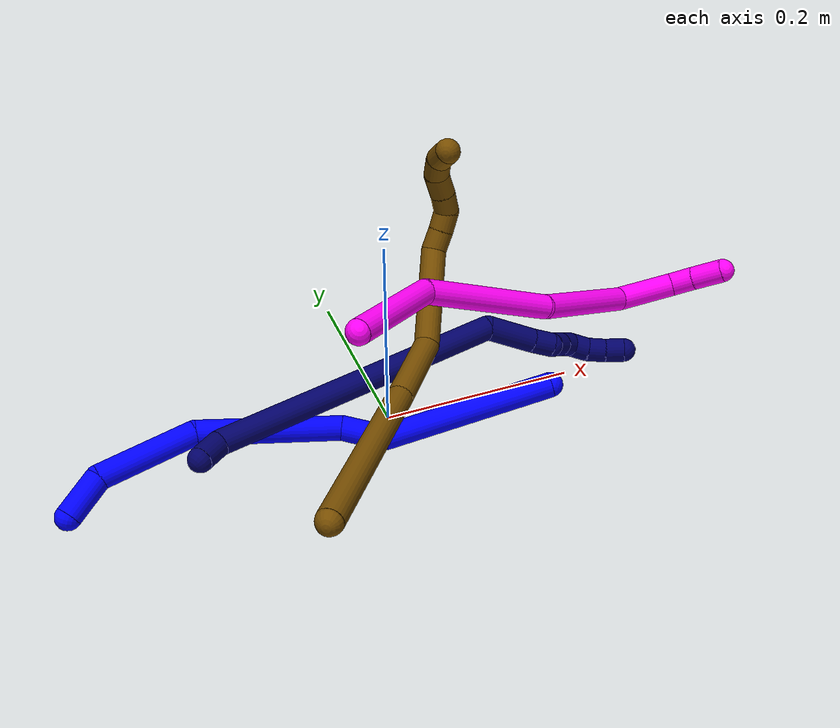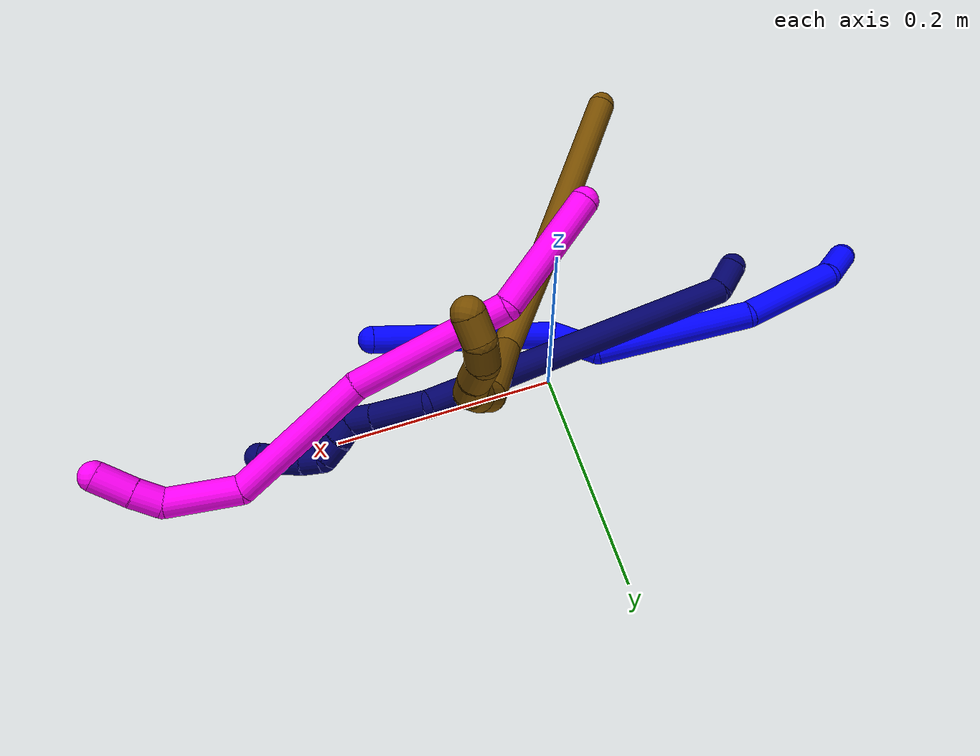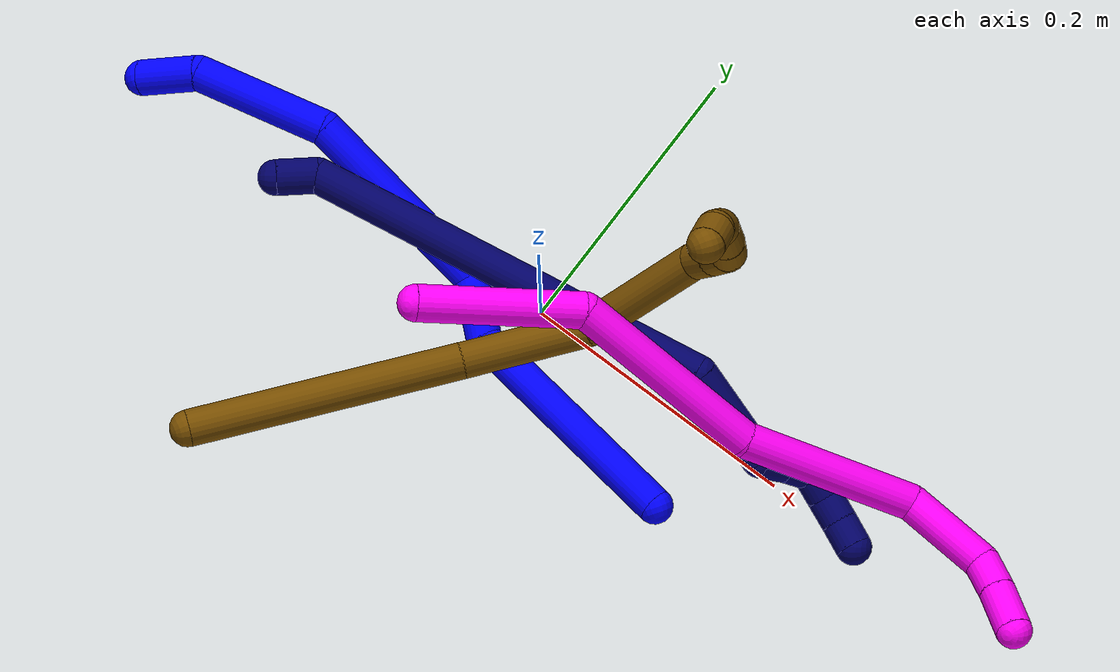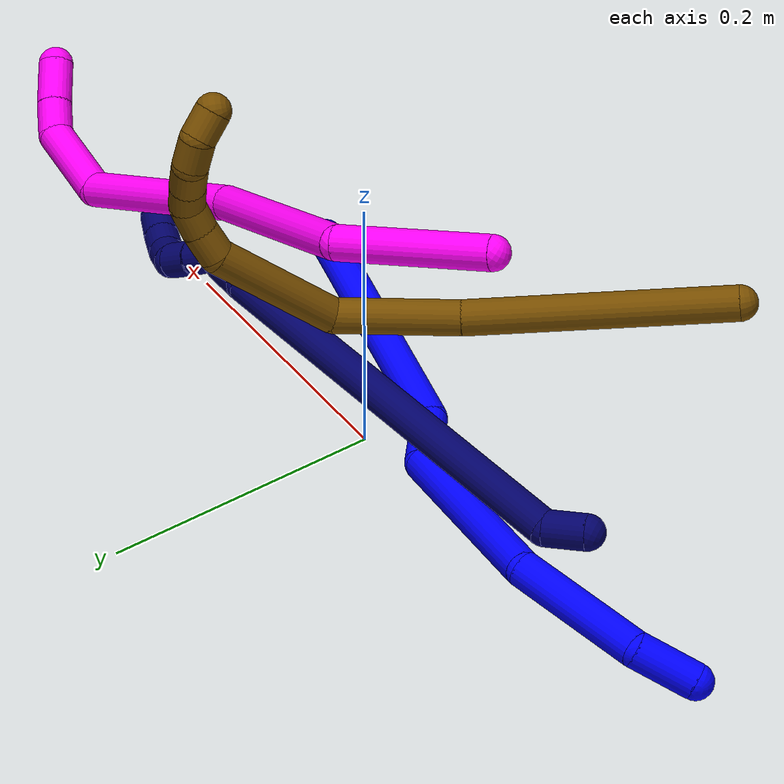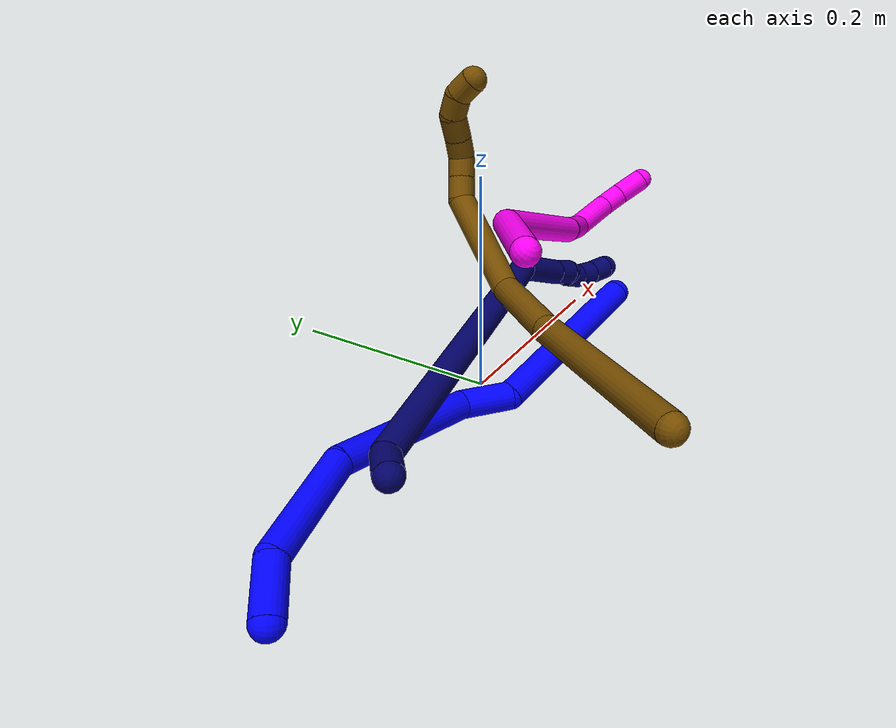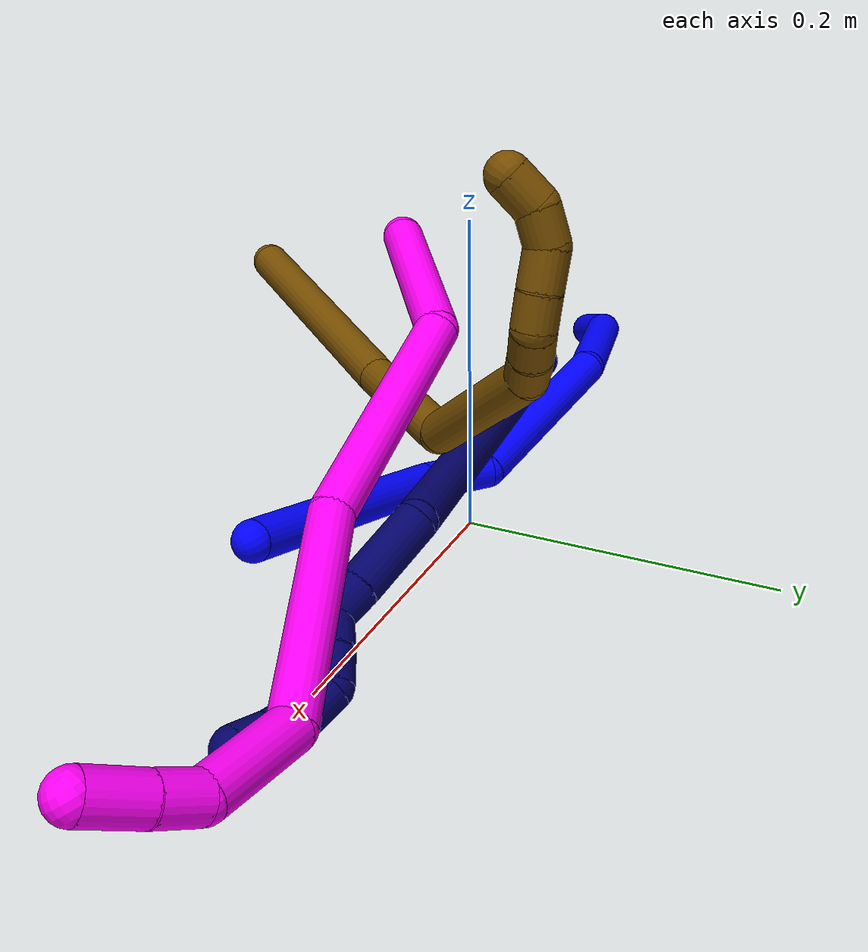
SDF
<sdf version="1.7">
 <world name="default">
  <model name="1">
   <static>0</static>
   <link name="1">
    <collision name="collision-cylinder-e_1_1_4">
     <pose>0.020949 -0.003981 0.004871 0.685206 1.27907 0.518649</pose>
     <geometry><cylinder><radius>0.0125</radius><length>0.043746</length></cylinder></geometry>
     <surface>
      <friction><ode><mu>1.16</mu><mu2>1.16</mu2><slip1>0</slip1><slip2>0</slip2></ode></friction>
      <contact><ode><kp>1e+06</kp><kd>1</kd><max_vel>0</max_vel><min_depth>0.001</min_depth></ode></contact>
     </surface>
    </collision>
    <visual name="visual-cylinder-e_1_1_4">
     <pose>0.020949 -0.003981 0.004871 0.685206 1.27907 0.518649</pose>
     <geometry><cylinder><radius>0.0125</radius><length>0.043746</length></cylinder></geometry>
     <material><ambient>0 0 1 1</ambient></material>
    </visual>
    <collision name="collision-cylinder-e_2_4_5">
     <pose>0.076763 -0.019196 0.041584 0.339181 0.801427 0.144829</pose>
     <geometry><cylinder><radius>0.0125</radius><length>0.097072</length></cylinder></geometry>
     <surface>
      <friction><ode><mu>1.16</mu><mu2>1.16</mu2><slip1>0</slip1><slip2>0</slip2></ode></friction>
      <contact><ode><kp>1e+06</kp><kd>1</kd><max_vel>0</max_vel><min_depth>0.001</min_depth></ode></contact>
     </surface>
    </collision>
    <visual name="visual-cylinder-e_2_4_5">
     <pose>0.076763 -0.019196 0.041584 0.339181 0.801427 0.144829</pose>
     <geometry><cylinder><radius>0.0125</radius><length>0.097072</length></cylinder></geometry>
     <material><ambient>0 0 1 1</ambient></material>
    </visual>
    <collision name="collision-cylinder-e_3_5_6">
     <pose>0.138997 -0.045238 0.138011 0.225371 0.391686 0.044893</pose>
     <geometry><cylinder><radius>0.0125</radius><length>0.143382</length></cylinder></geometry>
     <surface>
      <friction><ode><mu>1.16</mu><mu2>1.16</mu2><slip1>0</slip1><slip2>0</slip2></ode></friction>
      <contact><ode><kp>1e+06</kp><kd>1</kd><max_vel>0</max_vel><min_depth>0.001</min_depth></ode></contact>
     </surface>
    </collision>
    <visual name="visual-cylinder-e_3_5_6">
     <pose>0.138997 -0.045238 0.138011 0.225371 0.391686 0.044893</pose>
     <geometry><cylinder><radius>0.0125</radius><length>0.143382</length></cylinder></geometry>
     <material><ambient>0 0 1 1</ambient></material>
    </visual>
    <collision name="collision-cylinder-e_4_6_7">
     <pose>0.167414 -0.053848 0.224101 -0.280596 0.046857 -0.006619</pose>
     <geometry><cylinder><radius>0.0125</radius><length>0.044808</length></cylinder></geometry>
     <surface>
      <friction><ode><mu>1.16</mu><mu2>1.16</mu2><slip1>0</slip1><slip2>0</slip2></ode></friction>
      <contact><ode><kp>1e+06</kp><kd>1</kd><max_vel>0</max_vel><min_depth>0.001</min_depth></ode></contact>
     </surface>
    </collision>
    <visual name="visual-cylinder-e_4_6_7">
     <pose>0.167414 -0.053848 0.224101 -0.280596 0.046857 -0.006619</pose>
     <geometry><cylinder><radius>0.0125</radius><length>0.044808</length></cylinder></geometry>
     <material><ambient>0 0 1 1</ambient></material>
    </visual>
    <collision name="collision-cylinder-e_5_7_2">
     <pose>0.218235 -0.039325 0.31462 -0.120048 0.621376 -0.038587</pose>
     <geometry><cylinder><radius>0.0125</radius><length>0.170992</length></cylinder></geometry>
     <surface>
      <friction><ode><mu>1.16</mu><mu2>1.16</mu2><slip1>0</slip1><slip2>0</slip2></ode></friction>
      <contact><ode><kp>1e+06</kp><kd>1</kd><max_vel>0</max_vel><min_depth>0.001</min_depth></ode></contact>
     </surface>
    </collision>
    <visual name="visual-cylinder-e_5_7_2">
     <pose>0.218235 -0.039325 0.31462 -0.120048 0.621376 -0.038587</pose>
     <geometry><cylinder><radius>0.0125</radius><length>0.170992</length></cylinder></geometry>
     <material><ambient>0 0 1 1</ambient></material>
    </visual>
    <collision name="collision-sphere-2">
     <pose>0.268007 -0.031 0.383635 0 -0 0</pose>
     <geometry><sphere><radius>0.0125</radius></sphere></geometry>
     <surface>
      <friction><ode><mu>1.16</mu><mu2>1.16</mu2><slip1>0</slip1><slip2>0</slip2></ode></friction>
      <contact><ode><kp>1e+06</kp><kd>1</kd><max_vel>0</max_vel><min_depth>0.001</min_depth></ode></contact>
     </surface>
    </collision>
    <visual name="visual-sphere-2">
     <pose>0.268007 -0.031 0.383635 0 -0 0</pose>
     <geometry><sphere><radius>0.0125</radius></sphere></geometry>
     <material><ambient>0 0 1 1</ambient></material>
    </visual>
    <collision name="collision-sphere-7">
     <pose>0.168463 -0.04765 0.245606 0 -0 0</pose>
     <geometry><sphere><radius>0.0125</radius></sphere></geometry>
     <surface>
      <friction><ode><mu>1.16</mu><mu2>1.16</mu2><slip1>0</slip1><slip2>0</slip2></ode></friction>
      <contact><ode><kp>1e+06</kp><kd>1</kd><max_vel>0</max_vel><min_depth>0.001</min_depth></ode></contact>
     </surface>
    </collision>
    <visual name="visual-sphere-7">
     <pose>0.168463 -0.04765 0.245606 0 -0 0</pose>
     <geometry><sphere><radius>0.0125</radius></sphere></geometry>
     <material><ambient>0 0 1 1</ambient></material>
    </visual>
    <collision name="collision-sphere-6">
     <pose>0.166365 -0.060045 0.202597 0 -0 0</pose>
     <geometry><sphere><radius>0.0125</radius></sphere></geometry>
     <surface>
      <friction><ode><mu>1.16</mu><mu2>1.16</mu2><slip1>0</slip1><slip2>0</slip2></ode></friction>
      <contact><ode><kp>1e+06</kp><kd>1</kd><max_vel>0</max_vel><min_depth>0.001</min_depth></ode></contact>
     </surface>
    </collision>
    <visual name="visual-sphere-6">
     <pose>0.166365 -0.060045 0.202597 0 -0 0</pose>
     <geometry><sphere><radius>0.0125</radius></sphere></geometry>
     <material><ambient>0 0 1 1</ambient></material>
    </visual>
    <collision name="collision-sphere-5">
     <pose>0.111629 -0.030431 0.073425 0 -0 0</pose>
     <geometry><sphere><radius>0.0125</radius></sphere></geometry>
     <surface>
      <friction><ode><mu>1.16</mu><mu2>1.16</mu2><slip1>0</slip1><slip2>0</slip2></ode></friction>
      <contact><ode><kp>1e+06</kp><kd>1</kd><max_vel>0</max_vel><min_depth>0.001</min_depth></ode></contact>
     </surface>
    </collision>
    <visual name="visual-sphere-5">
     <pose>0.111629 -0.030431 0.073425 0 -0 0</pose>
     <geometry><sphere><radius>0.0125</radius></sphere></geometry>
     <material><ambient>0 0 1 1</ambient></material>
    </visual>
    <collision name="collision-sphere-1">
     <geometry><sphere><radius>0.0125</radius></sphere></geometry>
     <surface>
      <friction><ode><mu>1.16</mu><mu2>1.16</mu2><slip1>0</slip1><slip2>0</slip2></ode></friction>
      <contact><ode><kp>1e+06</kp><kd>1</kd><max_vel>0</max_vel><min_depth>0.001</min_depth></ode></contact>
     </surface>
    </collision>
    <visual name="visual-sphere-1">
     <geometry><sphere><radius>0.0125</radius></sphere></geometry>
     <material><ambient>0 0 1 1</ambient></material>
    </visual>
    <collision name="collision-sphere-4">
     <pose>0.041898 -0.007962 0.009742 0 -0 0</pose>
     <geometry><sphere><radius>0.0125</radius></sphere></geometry>
     <surface>
      <friction><ode><mu>1.16</mu><mu2>1.16</mu2><slip1>0</slip1><slip2>0</slip2></ode></friction>
      <contact><ode><kp>1e+06</kp><kd>1</kd><max_vel>0</max_vel><min_depth>0.001</min_depth></ode></contact>
     </surface>
    </collision>
    <visual name="visual-sphere-4">
     <pose>0.041898 -0.007962 0.009742 0 -0 0</pose>
     <geometry><sphere><radius>0.0125</radius></sphere></geometry>
     <material><ambient>0 0 1 1</ambient></material>
    </visual>
    <inertial>
     <pose>0.146231 -0.035322 0.175754 0 -0 0</pose>
     <mass>0.5</mass>
     <inertia>
      <ixx>0.00067</ixx>
      <ixy>0</ixy>
      <ixz>0</ixz>
      <iyy>0.000765</iyy>
      <iyz>0</iyz>
      <izz>-0.00035</izz>
     </inertia>
    </inertial>
   </link>
   <pose>-0.320092 -0.036986 0.011367 1.87793 -0.620649 0.804136</pose>
  </model>
  <model name="7">
   <static>0</static>
   <link name="7">
    <collision name="collision-cylinder-e_1_1_4">
     <pose>0.001512 0.005085 0.013456 -0.361302 0.104737 -0.019146</pose>
     <geometry><cylinder><radius>0.0125</radius><length>0.028928</length></cylinder></geometry>
     <surface>
      <friction><ode><mu>1.16</mu><mu2>1.16</mu2><slip1>0</slip1><slip2>0</slip2></ode></friction>
      <contact><ode><kp>1e+06</kp><kd>1</kd><max_vel>0</max_vel><min_depth>0.001</min_depth></ode></contact>
     </surface>
    </collision>
    <visual name="visual-cylinder-e_1_1_4">
     <pose>0.001512 0.005085 0.013456 -0.361302 0.104737 -0.019146</pose>
     <geometry><cylinder><radius>0.0125</radius><length>0.028928</length></cylinder></geometry>
     <material><ambient>0.003922 0 0.403922 1</ambient></material>
    </visual>
    <collision name="collision-cylinder-e_2_4_5">
     <pose>0.057678 -0.016132 0.162302 0.191879 0.377284 0.036741</pose>
     <geometry><cylinder><radius>0.0125</radius><length>0.29671</length></cylinder></geometry>
     <surface>
      <friction><ode><mu>1.16</mu><mu2>1.16</mu2><slip1>0</slip1><slip2>0</slip2></ode></friction>
      <contact><ode><kp>1e+06</kp><kd>1</kd><max_vel>0</max_vel><min_depth>0.001</min_depth></ode></contact>
     </surface>
    </collision>
    <visual name="visual-cylinder-e_2_4_5">
     <pose>0.057678 -0.016132 0.162302 0.191879 0.377284 0.036741</pose>
     <geometry><cylinder><radius>0.0125</radius><length>0.29671</length></cylinder></geometry>
     <material><ambient>0.003922 0 0.403922 1</ambient></material>
    </visual>
    <collision name="collision-cylinder-e_3_5_6">
     <pose>0.134151 -0.044725 0.311102 0.16916 1.01325 0.094028</pose>
     <geometry><cylinder><radius>0.0125</radius><length>0.051427</length></cylinder></geometry>
     <surface>
      <friction><ode><mu>1.16</mu><mu2>1.16</mu2><slip1>0</slip1><slip2>0</slip2></ode></friction>
      <contact><ode><kp>1e+06</kp><kd>1</kd><max_vel>0</max_vel><min_depth>0.001</min_depth></ode></contact>
     </surface>
    </collision>
    <visual name="visual-cylinder-e_3_5_6">
     <pose>0.134151 -0.044725 0.311102 0.16916 1.01325 0.094028</pose>
     <geometry><cylinder><radius>0.0125</radius><length>0.051427</length></cylinder></geometry>
     <material><ambient>0.003922 0 0.403922 1</ambient></material>
    </visual>
    <collision name="collision-cylinder-e_4_6_7">
     <pose>0.165143 -0.048866 0.330635 0.293595 0.961955 0.154019</pose>
     <geometry><cylinder><radius>0.0125</radius><length>0.022366</length></cylinder></geometry>
     <surface>
      <friction><ode><mu>1.16</mu><mu2>1.16</mu2><slip1>0</slip1><slip2>0</slip2></ode></friction>
      <contact><ode><kp>1e+06</kp><kd>1</kd><max_vel>0</max_vel><min_depth>0.001</min_depth></ode></contact>
     </surface>
    </collision>
    <visual name="visual-cylinder-e_4_6_7">
     <pose>0.165143 -0.048866 0.330635 0.293595 0.961955 0.154019</pose>
     <geometry><cylinder><radius>0.0125</radius><length>0.022366</length></cylinder></geometry>
     <material><ambient>0.003922 0 0.403922 1</ambient></material>
    </visual>
    <collision name="collision-cylinder-e_5_7_8">
     <pose>0.179087 -0.045856 0.344319 -0.571334 0.487893 -0.145946</pose>
     <geometry><cylinder><radius>0.0125</radius><length>0.020354</length></cylinder></geometry>
     <surface>
      <friction><ode><mu>1.16</mu><mu2>1.16</mu2><slip1>0</slip1><slip2>0</slip2></ode></friction>
      <contact><ode><kp>1e+06</kp><kd>1</kd><max_vel>0</max_vel><min_depth>0.001</min_depth></ode></contact>
     </surface>
    </collision>
    <visual name="visual-cylinder-e_5_7_8">
     <pose>0.179087 -0.045856 0.344319 -0.571334 0.487893 -0.145946</pose>
     <geometry><cylinder><radius>0.0125</radius><length>0.020354</length></cylinder></geometry>
     <material><ambient>0.003922 0 0.403922 1</ambient></material>
    </visual>
    <collision name="collision-cylinder-e_6_8_9">
     <pose>0.189316 -0.036745 0.359225 -0.524554 0.571607 -0.157448</pose>
     <geometry><cylinder><radius>0.0125</radius><length>0.020179</length></cylinder></geometry>
     <surface>
      <friction><ode><mu>1.16</mu><mu2>1.16</mu2><slip1>0</slip1><slip2>0</slip2></ode></friction>
      <contact><ode><kp>1e+06</kp><kd>1</kd><max_vel>0</max_vel><min_depth>0.001</min_depth></ode></contact>
     </surface>
    </collision>
    <visual name="visual-cylinder-e_6_8_9">
     <pose>0.189316 -0.036745 0.359225 -0.524554 0.571607 -0.157448</pose>
     <geometry><cylinder><radius>0.0125</radius><length>0.020179</length></cylinder></geometry>
     <material><ambient>0.003922 0 0.403922 1</ambient></material>
    </visual>
    <collision name="collision-cylinder-e_7_9_10">
     <pose>0.203377 -0.034203 0.371378 0.341356 1.03546 0.195703</pose>
     <geometry><cylinder><radius>0.0125</radius><length>0.020004</length></cylinder></geometry>
     <surface>
      <friction><ode><mu>1.16</mu><mu2>1.16</mu2><slip1>0</slip1><slip2>0</slip2></ode></friction>
      <contact><ode><kp>1e+06</kp><kd>1</kd><max_vel>0</max_vel><min_depth>0.001</min_depth></ode></contact>
     </surface>
    </collision>
    <visual name="visual-cylinder-e_7_9_10">
     <pose>0.203377 -0.034203 0.371378 0.341356 1.03546 0.195703</pose>
     <geometry><cylinder><radius>0.0125</radius><length>0.020004</length></cylinder></geometry>
     <material><ambient>0.003922 0 0.403922 1</ambient></material>
    </visual>
    <collision name="collision-cylinder-e_8_10_11">
     <pose>0.219171 -0.040096 0.381751 0.64478 0.801502 0.281187</pose>
     <geometry><cylinder><radius>0.0125</radius><length>0.02002</length></cylinder></geometry>
     <surface>
      <friction><ode><mu>1.16</mu><mu2>1.16</mu2><slip1>0</slip1><slip2>0</slip2></ode></friction>
      <contact><ode><kp>1e+06</kp><kd>1</kd><max_vel>0</max_vel><min_depth>0.001</min_depth></ode></contact>
     </surface>
    </collision>
    <visual name="visual-cylinder-e_8_10_11">
     <pose>0.219171 -0.040096 0.381751 0.64478 0.801502 0.281187</pose>
     <geometry><cylinder><radius>0.0125</radius><length>0.02002</length></cylinder></geometry>
     <material><ambient>0.003922 0 0.403922 1</ambient></material>
    </visual>
    <collision name="collision-cylinder-e_9_11_2">
     <pose>0.232644 -0.049686 0.392926 0.766784 0.678647 0.282845</pose>
     <geometry><cylinder><radius>0.0125</radius><length>0.020013</length></cylinder></geometry>
     <surface>
      <friction><ode><mu>1.16</mu><mu2>1.16</mu2><slip1>0</slip1><slip2>0</slip2></ode></friction>
      <contact><ode><kp>1e+06</kp><kd>1</kd><max_vel>0</max_vel><min_depth>0.001</min_depth></ode></contact>
     </surface>
    </collision>
    <visual name="visual-cylinder-e_9_11_2">
     <pose>0.232644 -0.049686 0.392926 0.766784 0.678647 0.282845</pose>
     <geometry><cylinder><radius>0.0125</radius><length>0.020013</length></cylinder></geometry>
     <material><ambient>0.003922 0 0.403922 1</ambient></material>
    </visual>
    <collision name="collision-sphere-2">
     <pose>0.238925 -0.05509 0.398535 0 -0 0</pose>
     <geometry><sphere><radius>0.0125</radius></sphere></geometry>
     <surface>
      <friction><ode><mu>1.16</mu><mu2>1.16</mu2><slip1>0</slip1><slip2>0</slip2></ode></friction>
      <contact><ode><kp>1e+06</kp><kd>1</kd><max_vel>0</max_vel><min_depth>0.001</min_depth></ode></contact>
     </surface>
    </collision>
    <visual name="visual-sphere-2">
     <pose>0.238925 -0.05509 0.398535 0 -0 0</pose>
     <geometry><sphere><radius>0.0125</radius></sphere></geometry>
     <material><ambient>0.003922 0 0.403922 1</ambient></material>
    </visual>
    <collision name="collision-sphere-11">
     <pose>0.226362 -0.044281 0.387316 0 -0 0</pose>
     <geometry><sphere><radius>0.0125</radius></sphere></geometry>
     <surface>
      <friction><ode><mu>1.16</mu><mu2>1.16</mu2><slip1>0</slip1><slip2>0</slip2></ode></friction>
      <contact><ode><kp>1e+06</kp><kd>1</kd><max_vel>0</max_vel><min_depth>0.001</min_depth></ode></contact>
     </surface>
    </collision>
    <visual name="visual-sphere-11">
     <pose>0.226362 -0.044281 0.387316 0 -0 0</pose>
     <geometry><sphere><radius>0.0125</radius></sphere></geometry>
     <material><ambient>0.003922 0 0.403922 1</ambient></material>
    </visual>
    <collision name="collision-sphere-10">
     <pose>0.211979 -0.035911 0.376186 0 -0 0</pose>
     <geometry><sphere><radius>0.0125</radius></sphere></geometry>
     <surface>
      <friction><ode><mu>1.16</mu><mu2>1.16</mu2><slip1>0</slip1><slip2>0</slip2></ode></friction>
      <contact><ode><kp>1e+06</kp><kd>1</kd><max_vel>0</max_vel><min_depth>0.001</min_depth></ode></contact>
     </surface>
    </collision>
    <visual name="visual-sphere-10">
     <pose>0.211979 -0.035911 0.376186 0 -0 0</pose>
     <geometry><sphere><radius>0.0125</radius></sphere></geometry>
     <material><ambient>0.003922 0 0.403922 1</ambient></material>
    </visual>
    <collision name="collision-sphere-9">
     <pose>0.194774 -0.032495 0.36657 0 -0 0</pose>
     <geometry><sphere><radius>0.0125</radius></sphere></geometry>
     <surface>
      <friction><ode><mu>1.16</mu><mu2>1.16</mu2><slip1>0</slip1><slip2>0</slip2></ode></friction>
      <contact><ode><kp>1e+06</kp><kd>1</kd><max_vel>0</max_vel><min_depth>0.001</min_depth></ode></contact>
     </surface>
    </collision>
    <visual name="visual-sphere-9">
     <pose>0.194774 -0.032495 0.36657 0 -0 0</pose>
     <geometry><sphere><radius>0.0125</radius></sphere></geometry>
     <material><ambient>0.003922 0 0.403922 1</ambient></material>
    </visual>
    <collision name="collision-sphere-4">
     <pose>0.003024 0.01017 0.026912 0 -0 0</pose>
     <geometry><sphere><radius>0.0125</radius></sphere></geometry>
     <surface>
      <friction><ode><mu>1.16</mu><mu2>1.16</mu2><slip1>0</slip1><slip2>0</slip2></ode></friction>
      <contact><ode><kp>1e+06</kp><kd>1</kd><max_vel>0</max_vel><min_depth>0.001</min_depth></ode></contact>
     </surface>
    </collision>
    <visual name="visual-sphere-4">
     <pose>0.003024 0.01017 0.026912 0 -0 0</pose>
     <geometry><sphere><radius>0.0125</radius></sphere></geometry>
     <material><ambient>0.003922 0 0.403922 1</ambient></material>
    </visual>
    <collision name="collision-sphere-1">
     <geometry><sphere><radius>0.0125</radius></sphere></geometry>
     <surface>
      <friction><ode><mu>1.16</mu><mu2>1.16</mu2><slip1>0</slip1><slip2>0</slip2></ode></friction>
      <contact><ode><kp>1e+06</kp><kd>1</kd><max_vel>0</max_vel><min_depth>0.001</min_depth></ode></contact>
     </surface>
    </collision>
    <visual name="visual-sphere-1">
     <geometry><sphere><radius>0.0125</radius></sphere></geometry>
     <material><ambient>0.003922 0 0.403922 1</ambient></material>
    </visual>
    <collision name="collision-sphere-8">
     <pose>0.183858 -0.040995 0.351881 0 -0 0</pose>
     <geometry><sphere><radius>0.0125</radius></sphere></geometry>
     <surface>
      <friction><ode><mu>1.16</mu><mu2>1.16</mu2><slip1>0</slip1><slip2>0</slip2></ode></friction>
      <contact><ode><kp>1e+06</kp><kd>1</kd><max_vel>0</max_vel><min_depth>0.001</min_depth></ode></contact>
     </surface>
    </collision>
    <visual name="visual-sphere-8">
     <pose>0.183858 -0.040995 0.351881 0 -0 0</pose>
     <geometry><sphere><radius>0.0125</radius></sphere></geometry>
     <material><ambient>0.003922 0 0.403922 1</ambient></material>
    </visual>
    <collision name="collision-sphere-5">
     <pose>0.112331 -0.042434 0.297691 0 -0 0</pose>
     <geometry><sphere><radius>0.0125</radius></sphere></geometry>
     <surface>
      <friction><ode><mu>1.16</mu><mu2>1.16</mu2><slip1>0</slip1><slip2>0</slip2></ode></friction>
      <contact><ode><kp>1e+06</kp><kd>1</kd><max_vel>0</max_vel><min_depth>0.001</min_depth></ode></contact>
     </surface>
    </collision>
    <visual name="visual-sphere-5">
     <pose>0.112331 -0.042434 0.297691 0 -0 0</pose>
     <geometry><sphere><radius>0.0125</radius></sphere></geometry>
     <material><ambient>0.003922 0 0.403922 1</ambient></material>
    </visual>
    <collision name="collision-sphere-6">
     <pose>0.15597 -0.047015 0.324513 0 -0 0</pose>
     <geometry><sphere><radius>0.0125</radius></sphere></geometry>
     <surface>
      <friction><ode><mu>1.16</mu><mu2>1.16</mu2><slip1>0</slip1><slip2>0</slip2></ode></friction>
      <contact><ode><kp>1e+06</kp><kd>1</kd><max_vel>0</max_vel><min_depth>0.001</min_depth></ode></contact>
     </surface>
    </collision>
    <visual name="visual-sphere-6">
     <pose>0.15597 -0.047015 0.324513 0 -0 0</pose>
     <geometry><sphere><radius>0.0125</radius></sphere></geometry>
     <material><ambient>0.003922 0 0.403922 1</ambient></material>
    </visual>
    <collision name="collision-sphere-7">
     <pose>0.174316 -0.050717 0.336757 0 -0 0</pose>
     <geometry><sphere><radius>0.0125</radius></sphere></geometry>
     <surface>
      <friction><ode><mu>1.16</mu><mu2>1.16</mu2><slip1>0</slip1><slip2>0</slip2></ode></friction>
      <contact><ode><kp>1e+06</kp><kd>1</kd><max_vel>0</max_vel><min_depth>0.001</min_depth></ode></contact>
     </surface>
    </collision>
    <visual name="visual-sphere-7">
     <pose>0.174316 -0.050717 0.336757 0 -0 0</pose>
     <geometry><sphere><radius>0.0125</radius></sphere></geometry>
     <material><ambient>0.003922 0 0.403922 1</ambient></material>
    </visual>
    <inertial>
     <pose>0.096654 -0.024377 0.218264 0 -0 0</pose>
     <mass>0.5</mass>
     <inertia>
      <ixx>0.002144</ixx>
      <ixy>0</ixy>
      <ixz>0</ixz>
      <iyy>0.002248</iyy>
      <iyz>0</iyz>
      <izz>-0.000404</izz>
     </inertia>
    </inertial>
   </link>
   <pose>-0.196614 -0.041352 0.043726 -1.24084 0.749428 -0.794996</pose>
  </model>
  <model name="10">
   <static>0</static>
   <link name="10">
    <collision name="collision-cylinder-e_1_1_4">
     <pose>0.042057 0.016371 0.033213 -0.457947 0.8489 -0.209876</pose>
     <geometry><cylinder><radius>0.0125</radius><length>0.11207</length></cylinder></geometry>
     <surface>
      <friction><ode><mu>1.16</mu><mu2>1.16</mu2><slip1>0</slip1><slip2>0</slip2></ode></friction>
      <contact><ode><kp>1e+06</kp><kd>1</kd><max_vel>0</max_vel><min_depth>0.001</min_depth></ode></contact>
     </surface>
    </collision>
    <visual name="visual-cylinder-e_1_1_4">
     <pose>0.042057 0.016371 0.033213 -0.457947 0.8489 -0.209876</pose>
     <geometry><cylinder><radius>0.0125</radius><length>0.11207</length></cylinder></geometry>
     <material><ambient>1 0 0.964706 1</ambient></material>
    </visual>
    <collision name="collision-cylinder-e_2_4_5">
     <pose>0.115081 0.088812 0.096155 -1.08329 0.453951 -0.276147</pose>
     <geometry><cylinder><radius>0.0125</radius><length>0.141233</length></cylinder></geometry>
     <surface>
      <friction><ode><mu>1.16</mu><mu2>1.16</mu2><slip1>0</slip1><slip2>0</slip2></ode></friction>
      <contact><ode><kp>1e+06</kp><kd>1</kd><max_vel>0</max_vel><min_depth>0.001</min_depth></ode></contact>
     </surface>
    </collision>
    <visual name="visual-cylinder-e_2_4_5">
     <pose>0.115081 0.088812 0.096155 -1.08329 0.453951 -0.276147</pose>
     <geometry><cylinder><radius>0.0125</radius><length>0.141233</length></cylinder></geometry>
     <material><ambient>1 0 0.964706 1</ambient></material>
    </visual>
    <collision name="collision-cylinder-e_3_5_6">
     <pose>0.183148 0.181309 0.162283 -0.785759 0.624323 -0.265902</pose>
     <geometry><cylinder><radius>0.0125</radius><length>0.126936</length></cylinder></geometry>
     <surface>
      <friction><ode><mu>1.16</mu><mu2>1.16</mu2><slip1>0</slip1><slip2>0</slip2></ode></friction>
      <contact><ode><kp>1e+06</kp><kd>1</kd><max_vel>0</max_vel><min_depth>0.001</min_depth></ode></contact>
     </surface>
    </collision>
    <visual name="visual-cylinder-e_3_5_6">
     <pose>0.183148 0.181309 0.162283 -0.785759 0.624323 -0.265902</pose>
     <geometry><cylinder><radius>0.0125</radius><length>0.126936</length></cylinder></geometry>
     <material><ambient>1 0 0.964706 1</ambient></material>
    </visual>
    <collision name="collision-cylinder-e_4_6_7">
     <pose>0.241139 0.240725 0.198356 -1.58499 0.737563 -0.74716</pose>
     <geometry><cylinder><radius>0.0125</radius><length>0.062132</length></cylinder></geometry>
     <surface>
      <friction><ode><mu>1.16</mu><mu2>1.16</mu2><slip1>0</slip1><slip2>0</slip2></ode></friction>
      <contact><ode><kp>1e+06</kp><kd>1</kd><max_vel>0</max_vel><min_depth>0.001</min_depth></ode></contact>
     </surface>
    </collision>
    <visual name="visual-cylinder-e_4_6_7">
     <pose>0.241139 0.240725 0.198356 -1.58499 0.737563 -0.74716</pose>
     <geometry><cylinder><radius>0.0125</radius><length>0.062132</length></cylinder></geometry>
     <material><ambient>1 0 0.964706 1</ambient></material>
    </visual>
    <collision name="collision-cylinder-e_5_7_8">
     <pose>0.268231 0.272603 0.191715 -2.18844 0.51704 -0.94674</pose>
     <geometry><cylinder><radius>0.0125</radius><length>0.025085</length></cylinder></geometry>
     <surface>
      <friction><ode><mu>1.16</mu><mu2>1.16</mu2><slip1>0</slip1><slip2>0</slip2></ode></friction>
      <contact><ode><kp>1e+06</kp><kd>1</kd><max_vel>0</max_vel><min_depth>0.001</min_depth></ode></contact>
     </surface>
    </collision>
    <visual name="visual-cylinder-e_5_7_8">
     <pose>0.268231 0.272603 0.191715 -2.18844 0.51704 -0.94674</pose>
     <geometry><cylinder><radius>0.0125</radius><length>0.025085</length></cylinder></geometry>
     <material><ambient>1 0 0.964706 1</ambient></material>
    </visual>
    <collision name="collision-cylinder-e_6_8_2">
     <pose>0.281565 0.292869 0.176211 -2.25025 0.453894 -0.900532</pose>
     <geometry><cylinder><radius>0.0125</radius><length>0.032544</length></cylinder></geometry>
     <surface>
      <friction><ode><mu>1.16</mu><mu2>1.16</mu2><slip1>0</slip1><slip2>0</slip2></ode></friction>
      <contact><ode><kp>1e+06</kp><kd>1</kd><max_vel>0</max_vel><min_depth>0.001</min_depth></ode></contact>
     </surface>
    </collision>
    <visual name="visual-cylinder-e_6_8_2">
     <pose>0.281565 0.292869 0.176211 -2.25025 0.453894 -0.900532</pose>
     <geometry><cylinder><radius>0.0125</radius><length>0.032544</length></cylinder></geometry>
     <material><ambient>1 0 0.964706 1</ambient></material>
    </visual>
    <collision name="collision-sphere-2">
     <pose>0.2887 0.304245 0.167022 0 -0 0</pose>
     <geometry><sphere><radius>0.0125</radius></sphere></geometry>
     <surface>
      <friction><ode><mu>1.16</mu><mu2>1.16</mu2><slip1>0</slip1><slip2>0</slip2></ode></friction>
      <contact><ode><kp>1e+06</kp><kd>1</kd><max_vel>0</max_vel><min_depth>0.001</min_depth></ode></contact>
     </surface>
    </collision>
    <visual name="visual-sphere-2">
     <pose>0.2887 0.304245 0.167022 0 -0 0</pose>
     <geometry><sphere><radius>0.0125</radius></sphere></geometry>
     <material><ambient>1 0 0.964706 1</ambient></material>
    </visual>
    <collision name="collision-sphere-4">
     <pose>0.084114 0.032741 0.066426 0 -0 0</pose>
     <geometry><sphere><radius>0.0125</radius></sphere></geometry>
     <surface>
      <friction><ode><mu>1.16</mu><mu2>1.16</mu2><slip1>0</slip1><slip2>0</slip2></ode></friction>
      <contact><ode><kp>1e+06</kp><kd>1</kd><max_vel>0</max_vel><min_depth>0.001</min_depth></ode></contact>
     </surface>
    </collision>
    <visual name="visual-sphere-4">
     <pose>0.084114 0.032741 0.066426 0 -0 0</pose>
     <geometry><sphere><radius>0.0125</radius></sphere></geometry>
     <material><ambient>1 0 0.964706 1</ambient></material>
    </visual>
    <collision name="collision-sphere-1">
     <geometry><sphere><radius>0.0125</radius></sphere></geometry>
     <surface>
      <friction><ode><mu>1.16</mu><mu2>1.16</mu2><slip1>0</slip1><slip2>0</slip2></ode></friction>
      <contact><ode><kp>1e+06</kp><kd>1</kd><max_vel>0</max_vel><min_depth>0.001</min_depth></ode></contact>
     </surface>
    </collision>
    <visual name="visual-sphere-1">
     <geometry><sphere><radius>0.0125</radius></sphere></geometry>
     <material><ambient>1 0 0.964706 1</ambient></material>
    </visual>
    <collision name="collision-sphere-8">
     <pose>0.274431 0.281492 0.185401 0 -0 0</pose>
     <geometry><sphere><radius>0.0125</radius></sphere></geometry>
     <surface>
      <friction><ode><mu>1.16</mu><mu2>1.16</mu2><slip1>0</slip1><slip2>0</slip2></ode></friction>
      <contact><ode><kp>1e+06</kp><kd>1</kd><max_vel>0</max_vel><min_depth>0.001</min_depth></ode></contact>
     </surface>
    </collision>
    <visual name="visual-sphere-8">
     <pose>0.274431 0.281492 0.185401 0 -0 0</pose>
     <geometry><sphere><radius>0.0125</radius></sphere></geometry>
     <material><ambient>1 0 0.964706 1</ambient></material>
    </visual>
    <collision name="collision-sphere-5">
     <pose>0.146048 0.144883 0.125883 0 -0 0</pose>
     <geometry><sphere><radius>0.0125</radius></sphere></geometry>
     <surface>
      <friction><ode><mu>1.16</mu><mu2>1.16</mu2><slip1>0</slip1><slip2>0</slip2></ode></friction>
      <contact><ode><kp>1e+06</kp><kd>1</kd><max_vel>0</max_vel><min_depth>0.001</min_depth></ode></contact>
     </surface>
    </collision>
    <visual name="visual-sphere-5">
     <pose>0.146048 0.144883 0.125883 0 -0 0</pose>
     <geometry><sphere><radius>0.0125</radius></sphere></geometry>
     <material><ambient>1 0 0.964706 1</ambient></material>
    </visual>
    <collision name="collision-sphere-6">
     <pose>0.220248 0.217735 0.198682 0 -0 0</pose>
     <geometry><sphere><radius>0.0125</radius></sphere></geometry>
     <surface>
      <friction><ode><mu>1.16</mu><mu2>1.16</mu2><slip1>0</slip1><slip2>0</slip2></ode></friction>
      <contact><ode><kp>1e+06</kp><kd>1</kd><max_vel>0</max_vel><min_depth>0.001</min_depth></ode></contact>
     </surface>
    </collision>
    <visual name="visual-sphere-6">
     <pose>0.220248 0.217735 0.198682 0 -0 0</pose>
     <geometry><sphere><radius>0.0125</radius></sphere></geometry>
     <material><ambient>1 0 0.964706 1</ambient></material>
    </visual>
    <collision name="collision-sphere-7">
     <pose>0.262031 0.263715 0.198029 0 -0 0</pose>
     <geometry><sphere><radius>0.0125</radius></sphere></geometry>
     <surface>
      <friction><ode><mu>1.16</mu><mu2>1.16</mu2><slip1>0</slip1><slip2>0</slip2></ode></friction>
      <contact><ode><kp>1e+06</kp><kd>1</kd><max_vel>0</max_vel><min_depth>0.001</min_depth></ode></contact>
     </surface>
    </collision>
    <visual name="visual-sphere-7">
     <pose>0.262031 0.263715 0.198029 0 -0 0</pose>
     <geometry><sphere><radius>0.0125</radius></sphere></geometry>
     <material><ambient>1 0 0.964706 1</ambient></material>
    </visual>
    <inertial>
     <pose>0.150178 0.137437 0.12154 0 -0 0</pose>
     <mass>0.5</mass>
     <inertia>
      <ixx>0.000333</ixx>
      <ixy>0</ixy>
      <ixz>0</ixz>
      <iyy>0.000292</iyy>
      <iyz>0</iyz>
      <izz>-0.000652</izz>
     </inertia>
    </inertial>
   </link>
   <pose>-0.049108 -0.068527 0.166913 -2.75 -0.534385 0.683692</pose>
  </model>
  <model name="12">
   <static>0</static>
   <link name="12">
    <collision name="collision-cylinder-e_1_1_4">
     <pose>0.014028 0.003342 -0.092817 -3.1056 0.1499 -2.67109</pose>
     <geometry><cylinder><radius>0.0125</radius><length>0.187861</length></cylinder></geometry>
     <surface>
      <friction><ode><mu>1.16</mu><mu2>1.16</mu2><slip1>0</slip1><slip2>0</slip2></ode></friction>
      <contact><ode><kp>1e+06</kp><kd>1</kd><max_vel>0</max_vel><min_depth>0.001</min_depth></ode></contact>
     </surface>
    </collision>
    <visual name="visual-cylinder-e_1_1_4">
     <pose>0.014028 0.003342 -0.092817 -3.1056 0.1499 -2.67109</pose>
     <geometry><cylinder><radius>0.0125</radius><length>0.187861</length></cylinder></geometry>
     <material><ambient>0.466667 0.301961 0 1</ambient></material>
    </visual>
    <collision name="collision-cylinder-e_2_4_5">
     <pose>0.037002 0.011066 -0.22828 -3.03921 0.205745 -2.22026</pose>
     <geometry><cylinder><radius>0.0125</radius><length>0.087588</length></cylinder></geometry>
     <surface>
      <friction><ode><mu>1.16</mu><mu2>1.16</mu2><slip1>0</slip1><slip2>0</slip2></ode></friction>
      <contact><ode><kp>1e+06</kp><kd>1</kd><max_vel>0</max_vel><min_depth>0.001</min_depth></ode></contact>
     </surface>
    </collision>
    <visual name="visual-cylinder-e_2_4_5">
     <pose>0.037002 0.011066 -0.22828 -3.03921 0.205745 -2.22026</pose>
     <geometry><cylinder><radius>0.0125</radius><length>0.087588</length></cylinder></geometry>
     <material><ambient>0.466667 0.301961 0 1</ambient></material>
    </visual>
    <collision name="collision-cylinder-e_3_5_6">
     <pose>0.064507 0.0494 -0.301466 -2.30332 0.385997 -0.82674</pose>
     <geometry><cylinder><radius>0.0125</radius><length>0.098588</length></cylinder></geometry>
     <surface>
      <friction><ode><mu>1.16</mu><mu2>1.16</mu2><slip1>0</slip1><slip2>0</slip2></ode></friction>
      <contact><ode><kp>1e+06</kp><kd>1</kd><max_vel>0</max_vel><min_depth>0.001</min_depth></ode></contact>
     </surface>
    </collision>
    <visual name="visual-cylinder-e_3_5_6">
     <pose>0.064507 0.0494 -0.301466 -2.30332 0.385997 -0.82674</pose>
     <geometry><cylinder><radius>0.0125</radius><length>0.098588</length></cylinder></geometry>
     <material><ambient>0.466667 0.301961 0 1</ambient></material>
    </visual>
    <collision name="collision-cylinder-e_4_6_7">
     <pose>0.090766 0.090075 -0.335251 -2.02059 0.800928 -1.1868</pose>
     <geometry><cylinder><radius>0.0125</radius><length>0.021449</length></cylinder></geometry>
     <surface>
      <friction><ode><mu>1.16</mu><mu2>1.16</mu2><slip1>0</slip1><slip2>0</slip2></ode></friction>
      <contact><ode><kp>1e+06</kp><kd>1</kd><max_vel>0</max_vel><min_depth>0.001</min_depth></ode></contact>
     </surface>
    </collision>
    <visual name="visual-cylinder-e_4_6_7">
     <pose>0.090766 0.090075 -0.335251 -2.02059 0.800928 -1.1868</pose>
     <geometry><cylinder><radius>0.0125</radius><length>0.021449</length></cylinder></geometry>
     <material><ambient>0.466667 0.301961 0 1</ambient></material>
    </visual>
    <collision name="collision-cylinder-e_5_7_8">
     <pose>0.105575 0.103707 -0.340237 -1.81752 0.784193 -0.975597</pose>
     <geometry><cylinder><radius>0.0125</radius><length>0.020131</length></cylinder></geometry>
     <surface>
      <friction><ode><mu>1.16</mu><mu2>1.16</mu2><slip1>0</slip1><slip2>0</slip2></ode></friction>
      <contact><ode><kp>1e+06</kp><kd>1</kd><max_vel>0</max_vel><min_depth>0.001</min_depth></ode></contact>
     </surface>
    </collision>
    <visual name="visual-cylinder-e_5_7_8">
     <pose>0.105575 0.103707 -0.340237 -1.81752 0.784193 -0.975597</pose>
     <geometry><cylinder><radius>0.0125</radius><length>0.020131</length></cylinder></geometry>
     <material><ambient>0.466667 0.301961 0 1</ambient></material>
    </visual>
    <collision name="collision-cylinder-e_6_8_9">
     <pose>0.116273 0.119596 -0.339398 -1.29112 0.366838 -0.277654</pose>
     <geometry><cylinder><radius>0.0125</radius><length>0.020015</length></cylinder></geometry>
     <surface>
      <friction><ode><mu>1.16</mu><mu2>1.16</mu2><slip1>0</slip1><slip2>0</slip2></ode></friction>
      <contact><ode><kp>1e+06</kp><kd>1</kd><max_vel>0</max_vel><min_depth>0.001</min_depth></ode></contact>
     </surface>
    </collision>
    <visual name="visual-cylinder-e_6_8_9">
     <pose>0.116273 0.119596 -0.339398 -1.29112 0.366838 -0.277654</pose>
     <geometry><cylinder><radius>0.0125</radius><length>0.020015</length></cylinder></geometry>
     <material><ambient>0.466667 0.301961 0 1</ambient></material>
    </visual>
    <collision name="collision-cylinder-e_7_9_10">
     <pose>0.123032 0.138988 -0.333206 -1.23675 0.280062 -0.199896</pose>
     <geometry><cylinder><radius>0.0125</radius><length>0.022938</length></cylinder></geometry>
     <surface>
      <friction><ode><mu>1.16</mu><mu2>1.16</mu2><slip1>0</slip1><slip2>0</slip2></ode></friction>
      <contact><ode><kp>1e+06</kp><kd>1</kd><max_vel>0</max_vel><min_depth>0.001</min_depth></ode></contact>
     </surface>
    </collision>
    <visual name="visual-cylinder-e_7_9_10">
     <pose>0.123032 0.138988 -0.333206 -1.23675 0.280062 -0.199896</pose>
     <geometry><cylinder><radius>0.0125</radius><length>0.022938</length></cylinder></geometry>
     <material><ambient>0.466667 0.301961 0 1</ambient></material>
    </visual>
    <collision name="collision-cylinder-e_8_10_11">
     <pose>0.132488 0.156 -0.324691 -0.932025 0.652837 -0.337297</pose>
     <geometry><cylinder><radius>0.0125</radius><length>0.020695</length></cylinder></geometry>
     <surface>
      <friction><ode><mu>1.16</mu><mu2>1.16</mu2><slip1>0</slip1><slip2>0</slip2></ode></friction>
      <contact><ode><kp>1e+06</kp><kd>1</kd><max_vel>0</max_vel><min_depth>0.001</min_depth></ode></contact>
     </surface>
    </collision>
    <visual name="visual-cylinder-e_8_10_11">
     <pose>0.132488 0.156 -0.324691 -0.932025 0.652837 -0.337297</pose>
     <geometry><cylinder><radius>0.0125</radius><length>0.020695</length></cylinder></geometry>
     <material><ambient>0.466667 0.301961 0 1</ambient></material>
    </visual>
    <collision name="collision-cylinder-e_9_11_2">
     <pose>0.14624 0.164812 -0.312947 -0.312793 0.804075 -0.133893</pose>
     <geometry><cylinder><radius>0.0125</radius><length>0.020735</length></cylinder></geometry>
     <surface>
      <friction><ode><mu>1.16</mu><mu2>1.16</mu2><slip1>0</slip1><slip2>0</slip2></ode></friction>
      <contact><ode><kp>1e+06</kp><kd>1</kd><max_vel>0</max_vel><min_depth>0.001</min_depth></ode></contact>
     </surface>
    </collision>
    <visual name="visual-cylinder-e_9_11_2">
     <pose>0.14624 0.164812 -0.312947 -0.312793 0.804075 -0.133893</pose>
     <geometry><cylinder><radius>0.0125</radius><length>0.020735</length></cylinder></geometry>
     <material><ambient>0.466667 0.301961 0 1</ambient></material>
    </visual>
    <collision name="collision-sphere-2">
     <pose>0.153707 0.167026 -0.306103 0 -0 0</pose>
     <geometry><sphere><radius>0.0125</radius></sphere></geometry>
     <surface>
      <friction><ode><mu>1.16</mu><mu2>1.16</mu2><slip1>0</slip1><slip2>0</slip2></ode></friction>
      <contact><ode><kp>1e+06</kp><kd>1</kd><max_vel>0</max_vel><min_depth>0.001</min_depth></ode></contact>
     </surface>
    </collision>
    <visual name="visual-sphere-2">
     <pose>0.153707 0.167026 -0.306103 0 -0 0</pose>
     <geometry><sphere><radius>0.0125</radius></sphere></geometry>
     <material><ambient>0.466667 0.301961 0 1</ambient></material>
    </visual>
    <collision name="collision-sphere-11">
     <pose>0.138774 0.162599 -0.31979 0 -0 0</pose>
     <geometry><sphere><radius>0.0125</radius></sphere></geometry>
     <surface>
      <friction><ode><mu>1.16</mu><mu2>1.16</mu2><slip1>0</slip1><slip2>0</slip2></ode></friction>
      <contact><ode><kp>1e+06</kp><kd>1</kd><max_vel>0</max_vel><min_depth>0.001</min_depth></ode></contact>
     </surface>
    </collision>
    <visual name="visual-sphere-11">
     <pose>0.138774 0.162599 -0.31979 0 -0 0</pose>
     <geometry><sphere><radius>0.0125</radius></sphere></geometry>
     <material><ambient>0.466667 0.301961 0 1</ambient></material>
    </visual>
    <collision name="collision-sphere-10">
     <pose>0.126203 0.149401 -0.329592 0 -0 0</pose>
     <geometry><sphere><radius>0.0125</radius></sphere></geometry>
     <surface>
      <friction><ode><mu>1.16</mu><mu2>1.16</mu2><slip1>0</slip1><slip2>0</slip2></ode></friction>
      <contact><ode><kp>1e+06</kp><kd>1</kd><max_vel>0</max_vel><min_depth>0.001</min_depth></ode></contact>
     </surface>
    </collision>
    <visual name="visual-sphere-10">
     <pose>0.126203 0.149401 -0.329592 0 -0 0</pose>
     <geometry><sphere><radius>0.0125</radius></sphere></geometry>
     <material><ambient>0.466667 0.301961 0 1</ambient></material>
    </visual>
    <collision name="collision-sphere-9">
     <pose>0.119862 0.128575 -0.33682 0 -0 0</pose>
     <geometry><sphere><radius>0.0125</radius></sphere></geometry>
     <surface>
      <friction><ode><mu>1.16</mu><mu2>1.16</mu2><slip1>0</slip1><slip2>0</slip2></ode></friction>
      <contact><ode><kp>1e+06</kp><kd>1</kd><max_vel>0</max_vel><min_depth>0.001</min_depth></ode></contact>
     </surface>
    </collision>
    <visual name="visual-sphere-9">
     <pose>0.119862 0.128575 -0.33682 0 -0 0</pose>
     <geometry><sphere><radius>0.0125</radius></sphere></geometry>
     <material><ambient>0.466667 0.301961 0 1</ambient></material>
    </visual>
    <collision name="collision-sphere-4">
     <pose>0.028055 0.006684 -0.185634 0 -0 0</pose>
     <geometry><sphere><radius>0.0125</radius></sphere></geometry>
     <surface>
      <friction><ode><mu>1.16</mu><mu2>1.16</mu2><slip1>0</slip1><slip2>0</slip2></ode></friction>
      <contact><ode><kp>1e+06</kp><kd>1</kd><max_vel>0</max_vel><min_depth>0.001</min_depth></ode></contact>
     </surface>
    </collision>
    <visual name="visual-sphere-4">
     <pose>0.028055 0.006684 -0.185634 0 -0 0</pose>
     <geometry><sphere><radius>0.0125</radius></sphere></geometry>
     <material><ambient>0.466667 0.301961 0 1</ambient></material>
    </visual>
    <collision name="collision-sphere-1">
     <geometry><sphere><radius>0.0125</radius></sphere></geometry>
     <surface>
      <friction><ode><mu>1.16</mu><mu2>1.16</mu2><slip1>0</slip1><slip2>0</slip2></ode></friction>
      <contact><ode><kp>1e+06</kp><kd>1</kd><max_vel>0</max_vel><min_depth>0.001</min_depth></ode></contact>
     </surface>
    </collision>
    <visual name="visual-sphere-1">
     <geometry><sphere><radius>0.0125</radius></sphere></geometry>
     <material><ambient>0.466667 0.301961 0 1</ambient></material>
    </visual>
    <collision name="collision-sphere-8">
     <pose>0.112683 0.110618 -0.341977 0 -0 0</pose>
     <geometry><sphere><radius>0.0125</radius></sphere></geometry>
     <surface>
      <friction><ode><mu>1.16</mu><mu2>1.16</mu2><slip1>0</slip1><slip2>0</slip2></ode></friction>
      <contact><ode><kp>1e+06</kp><kd>1</kd><max_vel>0</max_vel><min_depth>0.001</min_depth></ode></contact>
     </surface>
    </collision>
    <visual name="visual-sphere-8">
     <pose>0.112683 0.110618 -0.341977 0 -0 0</pose>
     <geometry><sphere><radius>0.0125</radius></sphere></geometry>
     <material><ambient>0.466667 0.301961 0 1</ambient></material>
    </visual>
    <collision name="collision-sphere-5">
     <pose>0.045949 0.015447 -0.270926 0 -0 0</pose>
     <geometry><sphere><radius>0.0125</radius></sphere></geometry>
     <surface>
      <friction><ode><mu>1.16</mu><mu2>1.16</mu2><slip1>0</slip1><slip2>0</slip2></ode></friction>
      <contact><ode><kp>1e+06</kp><kd>1</kd><max_vel>0</max_vel><min_depth>0.001</min_depth></ode></contact>
     </surface>
    </collision>
    <visual name="visual-sphere-5">
     <pose>0.045949 0.015447 -0.270926 0 -0 0</pose>
     <geometry><sphere><radius>0.0125</radius></sphere></geometry>
     <material><ambient>0.466667 0.301961 0 1</ambient></material>
    </visual>
    <collision name="collision-sphere-6">
     <pose>0.083066 0.083353 -0.332005 0 -0 0</pose>
     <geometry><sphere><radius>0.0125</radius></sphere></geometry>
     <surface>
      <friction><ode><mu>1.16</mu><mu2>1.16</mu2><slip1>0</slip1><slip2>0</slip2></ode></friction>
      <contact><ode><kp>1e+06</kp><kd>1</kd><max_vel>0</max_vel><min_depth>0.001</min_depth></ode></contact>
     </surface>
    </collision>
    <visual name="visual-sphere-6">
     <pose>0.083066 0.083353 -0.332005 0 -0 0</pose>
     <geometry><sphere><radius>0.0125</radius></sphere></geometry>
     <material><ambient>0.466667 0.301961 0 1</ambient></material>
    </visual>
    <collision name="collision-sphere-7">
     <pose>0.098466 0.096797 -0.338496 0 -0 0</pose>
     <geometry><sphere><radius>0.0125</radius></sphere></geometry>
     <surface>
      <friction><ode><mu>1.16</mu><mu2>1.16</mu2><slip1>0</slip1><slip2>0</slip2></ode></friction>
      <contact><ode><kp>1e+06</kp><kd>1</kd><max_vel>0</max_vel><min_depth>0.001</min_depth></ode></contact>
     </surface>
    </collision>
    <visual name="visual-sphere-7">
     <pose>0.098466 0.096797 -0.338496 0 -0 0</pose>
     <geometry><sphere><radius>0.0125</radius></sphere></geometry>
     <material><ambient>0.466667 0.301961 0 1</ambient></material>
    </visual>
    <inertial>
     <pose>0.054463 0.04543 -0.217674 0 -0 0</pose>
     <mass>0.5</mass>
     <inertia>
      <ixx>-0.000815</ixx>
      <ixy>0</ixy>
      <ixz>0</ixz>
      <iyy>0.000177</iyy>
      <iyz>0</iyz>
      <izz>-0.000246</izz>
     </inertia>
    </inertial>
   </link>
   <pose>-0.126548 -0.218435 0.105769 1.29842 -0.566272 -0.400822</pose>
  </model>
 </world>
</sdf>
